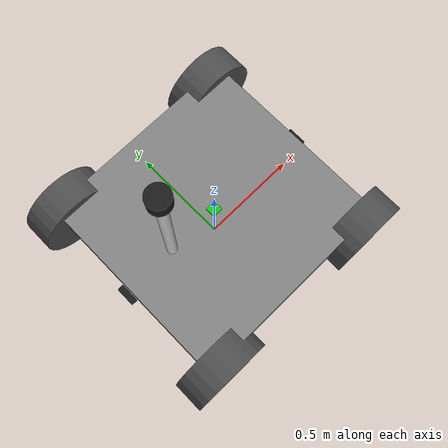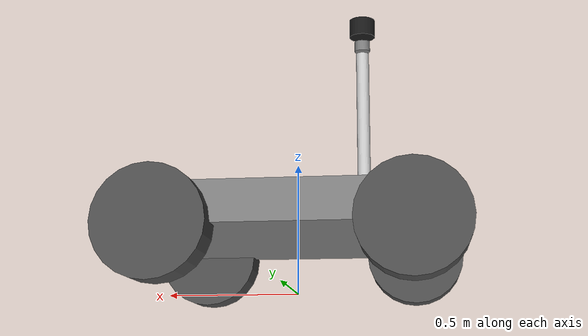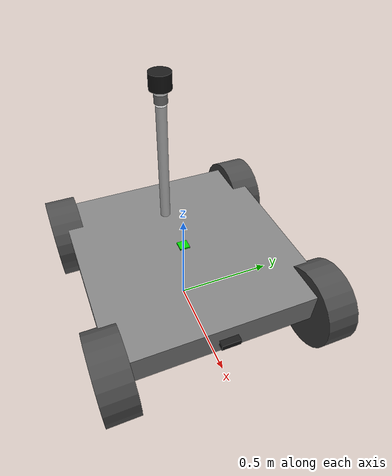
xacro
<?xml version="1.0"?>
<robot xmlns:xacro="http://www.ros.org/wiki/xacro" name="kolestel_robot">

  <!-- If true, visual geometry is loaded from meshes/ (exported from Onshape). -->
  <xacro:arg name="use_meshes" default="false"/>

  <!--
    Main robot description file for Gazebo Sim (Harmonic).
    Combines base robot model with Gazebo Sim plugins.

    Usage:
      xacro robot_gz.urdf.xacro > robot.urdf
  -->

  <!-- Include robot properties -->
  <xacro:include filename="$(find kolestel_robot)/urdf/robot_properties.xacro"/>

  <!-- Include inertia macros -->
  <xacro:include filename="$(find kolestel_robot)/urdf/inertia_macros.xacro"/>

  <!-- Include wheel macro -->
  <xacro:include filename="$(find kolestel_robot)/urdf/wheel.xacro"/>

  <!-- Include sensors (geometry + frames) -->
  <xacro:include filename="$(find kolestel_robot)/urdf/sensors.xacro"/>

  <!-- Include Gazebo Sim plugins -->
  <xacro:include filename="$(find kolestel_robot)/urdf/gz_plugins.xacro"/>

  <!-- ==================== BASE FOOTPRINT ==================== -->
  <link name="base_footprint"/>

  <joint name="base_footprint_joint" type="fixed">
    <parent link="base_footprint"/>
    <child link="base_link"/>
    <!-- Put base_link above ground by wheel radius -->
    <origin xyz="0 0 ${wheel_radius}" rpy="0 0 0"/>
  </joint>

  <!-- ==================== BASE LINK (CHASSIS) ==================== -->
  <link name="base_link">
    <visual>
      <origin xyz="0 0 ${chassis_height/2}" rpy="0 0 0"/>
      <geometry>
        <xacro:if value="$(arg use_meshes)">
          <mesh filename="package://kolestel_robot/meshes/chassis_visual.dae" scale="1 1 1"/>
        </xacro:if>
        <xacro:unless value="$(arg use_meshes)">
          <box size="${chassis_length} ${chassis_width} ${chassis_height}"/>
        </xacro:unless>
      </geometry>
      <material name="grey">
        <color rgba="0.5 0.5 0.5 1"/>
      </material>
    </visual>
    <collision>
      <origin xyz="0 0 ${chassis_height/2}" rpy="0 0 0"/>
      <geometry>
        <box size="${chassis_length} ${chassis_width} ${chassis_height}"/>
      </geometry>
    </collision>
    <xacro:box_inertia m="${chassis_mass}" x="${chassis_length}" y="${chassis_width}" z="${chassis_height}"/>
  </link>

  <!-- ==================== ANTENNA MAST ==================== -->
  <link name="antenna_mast_link">
    <visual>
      <origin xyz="0 0 ${antenna_height/2}" rpy="0 0 0"/>
      <geometry>
        <cylinder radius="${mast_radius}" length="${antenna_height}"/>
      </geometry>
      <material name="silver">
        <color rgba="0.8 0.8 0.8 1"/>
      </material>
    </visual>
    <collision>
      <origin xyz="0 0 ${antenna_height/2}" rpy="0 0 0"/>
      <geometry>
        <cylinder radius="${mast_radius}" length="${antenna_height}"/>
      </geometry>
    </collision>
    <xacro:cylinder_inertia m="${mast_mass}" r="${mast_radius}" h="${antenna_height}"/>
  </link>

  <joint name="antenna_mast_joint" type="fixed">
    <parent link="base_link"/>
    <child link="antenna_mast_link"/>
    <origin xyz="${-chassis_length/4} 0 ${chassis_height}" rpy="0 0 0"/>
  </joint>

  <!-- ==================== WHEELS ==================== -->
  <!-- Wheel macro signature: (prefix parent x_pos y_pos) -->
  <xacro:wheel prefix="front_left"  parent="base_link" x_pos="${wheelbase/2}"  y_pos="${track_width/2}"/>
  <xacro:wheel prefix="front_right" parent="base_link" x_pos="${wheelbase/2}"  y_pos="${-track_width/2}"/>
  <xacro:wheel prefix="rear_left"   parent="base_link" x_pos="${-wheelbase/2}" y_pos="${track_width/2}"/>
  <xacro:wheel prefix="rear_right"  parent="base_link" x_pos="${-wheelbase/2}" y_pos="${-track_width/2}"/>

  <!-- ==================== SENSORS ==================== -->
  <xacro:lidar_sensor parent="antenna_mast_link" x_pos="0" y_pos="0" z_pos="${antenna_height + 0.05}"/>

  <xacro:camera_sensor name="camera_front" parent="base_link"
                       x_pos="${chassis_length/2 + 0.02}" y_pos="0" z_pos="${chassis_height/2}"
                       roll="0" pitch="0" yaw="0"/>

  <xacro:camera_sensor name="camera_rear" parent="base_link"
                       x_pos="${-chassis_length/2 - 0.02}" y_pos="0" z_pos="${chassis_height/2}"
                       roll="0" pitch="0" yaw="${pi}"/>

  <!-- Line-follow camera (downward looking). Tune x_pos/z_pos for your track. -->
  <xacro:camera_sensor name="line_camera" parent="base_link"
                       x_pos="${chassis_length/2 - 0.10}" y_pos="0" z_pos="0.12"
                       roll="0" pitch="0" yaw="0"/>

  <xacro:imu_sensor parent="base_link" x_pos="0" y_pos="0" z_pos="${chassis_height}"/>

</robot>

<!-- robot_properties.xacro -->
<robot xmlns:xacro="http://www.ros.org/wiki/xacro">

  <!-- ROBOT PROPERTIES        -->
  <!-- Based on technical drawings: Kolestel 001 -->

  <!-- Physical Constants -->
  <xacro:property name="gravity" value="9.81"/>

  <!-- CHASSIS DIMENSIONS      -->

  <!-- Main chassis (base_link) -->
  <xacro:property name="chassis_length" value="1.024"/>      <!-- meters (from drawing: 1024mm) -->
  <xacro:property name="chassis_width" value="1.000"/>       <!-- meters (from drawing: 1000mm) -->
  <xacro:property name="chassis_height" value="0.150"/>      <!-- meters (estimated frame height) -->
  <xacro:property name="chassis_mass" value="100.0"/>        <!-- kg (main frame mass) -->

  <!-- Ground clearance -->
  <xacro:property name="ground_clearance" value="0.271"/>    <!-- meters (from drawing: 271mm) -->

  <!-- WHEEL DIMENSIONS        -->

  <xacro:property name="wheel_radius" value="0.200"/>        <!-- meters (diameter 400mm / 2) -->
  <xacro:property name="wheel_width" value="0.150"/>         <!-- meters (estimated tire width) -->
  <xacro:property name="wheel_mass" value="7.5"/>            <!-- kg per wheel -->

  <!-- Wheel positions -->
  <xacro:property name="wheelbase" value="0.889"/>           <!-- meters (from drawing: 889mm) -->
  <xacro:property name="wheel_track" value="1.000"/>         <!-- meters (track width: 1000mm) -->

  <!-- Aliases for compatibility with other xacro files -->
  <!-- (Some files refer to track_width instead of wheel_track) -->
  <xacro:property name="track_width" value="${wheel_track}"/>

  <!-- Wheel physics -->
  <xacro:property name="wheel_friction_mu1" value="1.0"/>
  <xacro:property name="wheel_friction_mu2" value="1.0"/>
  <xacro:property name="wheel_kp" value="1000000.0"/>
  <xacro:property name="wheel_kd" value="100.0"/>

  <!-- UPPER STRUCTURE         -->

  <!-- Equipment platform -->
  <xacro:property name="platform_length" value="0.800"/>
  <xacro:property name="platform_width" value="0.600"/>
  <xacro:property name="platform_height" value="0.050"/>
  <xacro:property name="platform_mass" value="15.0"/>
  <xacro:property name="platform_z_offset" value="0.200"/>   <!-- height above chassis -->

  <!-- Mast (antenna pole) -->
  <xacro:property name="mast_radius" value="0.025"/>
  <xacro:property name="mast_height" value="0.600"/>         <!-- from drawing: total height 1342mm -->
  <xacro:property name="mast_mass" value="3.0"/>

  <!-- Alias used by robot_gz.urdf.xacro -->
  <xacro:property name="antenna_height" value="${mast_height}"/>

  <!-- SENSOR DIMENSIONS       -->

  <!-- Lidar -->
  <xacro:property name="lidar_radius" value="0.050"/>
  <xacro:property name="lidar_height" value="0.070"/>
  <xacro:property name="lidar_mass" value="0.830"/>          <!-- typical 2D lidar mass -->
  <xacro:property name="lidar_x_offset" value="0.0"/>
  <xacro:property name="lidar_z_offset" value="0.300"/>      <!-- above platform -->

  <!-- Cameras -->
  <xacro:property name="camera_length" value="0.030"/>
  <xacro:property name="camera_width" value="0.090"/>
  <xacro:property name="camera_height" value="0.030"/>
  <xacro:property name="camera_mass" value="0.200"/>

  <!-- IMU -->
  <xacro:property name="imu_size" value="0.050"/>
  <xacro:property name="imu_mass" value="0.100"/>

  <!-- BATTERY BOX             -->

  <xacro:property name="battery_length" value="0.400"/>
  <xacro:property name="battery_width" value="0.300"/>
  <xacro:property name="battery_height" value="0.200"/>
  <xacro:property name="battery_mass" value="25.0"/>         <!-- typical battery pack -->

  <!-- CONTROL PARAMETERS      -->

  <!-- Skid-steer drive -->
  <xacro:property name="max_wheel_torque" value="100.0"/>    <!-- Nm -->
  <xacro:property name="max_wheel_acceleration" value="3.0"/> <!-- rad/s^2 -->
  <xacro:property name="max_linear_velocity" value="2.0"/>
  <xacro:property name="max_angular_velocity" value="1.5"/>  <!-- rad/s -->

  <!-- COLORS / MATERIALS      -->

  <material name="black">
    <color rgba="0.1 0.1 0.1 1.0"/>
  </material>

  <material name="dark_gray">
    <color rgba="0.3 0.3 0.3 1.0"/>
  </material>

  <material name="gray">
    <color rgba="0.5 0.5 0.5 1.0"/>
  </material>

  <material name="light_gray">
    <color rgba="0.7 0.7 0.7 1.0"/>
  </material>

  <material name="white">
    <color rgba="0.95 0.95 0.95 1.0"/>
  </material>

  <material name="red">
    <color rgba="0.8 0.0 0.0 1.0"/>
  </material>

  <material name="green">
    <color rgba="0.0 0.8 0.0 1.0"/>
  </material>

  <material name="blue">
    <color rgba="0.0 0.0 0.8 1.0"/>
  </material>

  <material name="yellow">
    <color rgba="0.9 0.9 0.0 1.0"/>
  </material>

  <material name="orange">
    <color rgba="1.0 0.5 0.0 1.0"/>
  </material>

</robot>

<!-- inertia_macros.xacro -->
<robot xmlns:xacro="http://www.ros.org/wiki/xacro">

  <!-- INERTIA MACROS          -->

  <!-- Macro for box inertia -->
  <xacro:macro name="box_inertia" params="m x y z">
    <inertial>
      <mass value="${m}"/>
      <inertia
        ixx="${(1/12) * m * (y*y + z*z)}" ixy="0.0" ixz="0.0"
        iyy="${(1/12) * m * (x*x + z*z)}" iyz="0.0"
        izz="${(1/12) * m * (x*x + y*y)}"/>
    </inertial>
  </xacro:macro>

  <!-- Macro for cylinder inertia (aligned with Z axis) -->
  <xacro:macro name="cylinder_inertia" params="m r h">
    <inertial>
      <mass value="${m}"/>
      <inertia
        ixx="${(1/12) * m * (3*r*r + h*h)}" ixy="0.0" ixz="0.0"
        iyy="${(1/12) * m * (3*r*r + h*h)}" iyz="0.0"
        izz="${(1/2) * m * r * r}"/>
    </inertial>
  </xacro:macro>

  <!-- Macro for cylinder inertia (aligned with Y axis - for wheels) -->
  <xacro:macro name="wheel_inertia" params="m r h">
    <inertial>
      <mass value="${m}"/>
      <inertia
        ixx="${(1/12) * m * (3*r*r + h*h)}" ixy="0.0" ixz="0.0"
        iyy="${(1/2) * m * r * r}" iyz="0.0"
        izz="${(1/12) * m * (3*r*r + h*h)}"/>
    </inertial>
  </xacro:macro>

  <!-- Macro for sphere inertia -->
  <xacro:macro name="sphere_inertia" params="m r">
    <inertial>
      <mass value="${m}"/>
      <inertia
        ixx="${(2/5) * m * r * r}" ixy="0.0" ixz="0.0"
        iyy="${(2/5) * m * r * r}" iyz="0.0"
        izz="${(2/5) * m * r * r}"/>
    </inertial>
  </xacro:macro>

  <!-- Macro for null inertia (for dummy links) -->
  <xacro:macro name="null_inertia">
    <inertial>
      <mass value="0.001"/>
      <inertia ixx="0.0001" ixy="0" ixz="0" iyy="0.0001" iyz="0" izz="0.0001"/>
    </inertial>
  </xacro:macro>

</robot>

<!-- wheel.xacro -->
<robot xmlns:xacro="http://www.ros.org/wiki/xacro">

  <!-- WHEEL MACRO             -->

  <xacro:macro name="wheel" params="prefix parent x_pos y_pos">

    <!-- Wheel Link -->
    <link name="${prefix}_wheel_link">
      <visual>
        <origin xyz="0 0 0" rpy="${pi/2} 0 0"/>
        <geometry>
          <cylinder radius="${wheel_radius}" length="${wheel_width}"/>
        </geometry>
        <material name="dark_gray"/>
      </visual>

      <collision>
        <origin xyz="0 0 0" rpy="${pi/2} 0 0"/>
        <geometry>
          <cylinder radius="${wheel_radius}" length="${wheel_width}"/>
        </geometry>
      </collision>

      <xacro:wheel_inertia m="${wheel_mass}" r="${wheel_radius}" h="${wheel_width}"/>
    </link>

    <!-- Wheel Joint -->
    <joint name="${prefix}_wheel_joint" type="continuous">
      <parent link="${parent}"/>
      <child link="${prefix}_wheel_link"/>
      <origin xyz="${x_pos} ${y_pos} 0" rpy="0 0 0"/>
      <axis xyz="0 1 0"/>
      <dynamics damping="0.1" friction="0.1"/>
      <limit effort="${max_wheel_torque}" velocity="20.0"/>
    </joint>

    <!-- Gazebo wheel properties -->
    <gazebo reference="${prefix}_wheel_link">
      <material>Gazebo/DarkGrey</material>
      <mu1>${wheel_friction_mu1}</mu1>
      <mu2>${wheel_friction_mu2}</mu2>
      <kp>${wheel_kp}</kp>
      <kd>${wheel_kd}</kd>
      <minDepth>0.001</minDepth>
      <maxVel>1.0</maxVel>
      <fdir1>1 0 0</fdir1>
    </gazebo>

    <!-- Transmission for ros2_control -->
    <transmission name="${prefix}_wheel_transmission">
      <type>transmission_interface/SimpleTransmission</type>
      <joint name="${prefix}_wheel_joint">
        <hardwareInterface>hardware_interface/VelocityJointInterface</hardwareInterface>
      </joint>
      <actuator name="${prefix}_wheel_motor">
        <hardwareInterface>hardware_interface/VelocityJointInterface</hardwareInterface>
        <mechanicalReduction>1</mechanicalReduction>
      </actuator>
    </transmission>

  </xacro:macro>

</robot>

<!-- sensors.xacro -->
<robot xmlns:xacro="http://www.ros.org/wiki/xacro">

  <!-- Sensor macros: geometry + frames only (Gazebo Sim sensors are configured in gz_plugins.xacro) -->

  <!-- LIDAR MACRO             -->
  <xacro:macro name="lidar_sensor" params="parent x_pos y_pos z_pos">

    <!-- Lidar Mount -->
    <link name="lidar_mount_link">
      <visual>
        <origin xyz="0 0 -0.02" rpy="0 0 0"/>
        <geometry>
          <cylinder radius="0.03" length="0.04"/>
        </geometry>
        <material name="gray"/>
      </visual>
      <xacro:cylinder_inertia m="0.1" r="0.03" h="0.04"/>
    </link>

    <joint name="lidar_mount_joint" type="fixed">
      <parent link="${parent}"/>
      <child link="lidar_mount_link"/>
      <origin xyz="${x_pos} ${y_pos} ${z_pos}" rpy="0 0 0"/>
    </joint>

    <!-- Lidar Link -->
    <link name="lidar_link">
      <visual>
        <origin xyz="0 0 0" rpy="0 0 0"/>
        <geometry>
          <cylinder radius="${lidar_radius}" length="${lidar_height}"/>
        </geometry>
        <material name="black"/>
      </visual>

      <collision>
        <origin xyz="0 0 0" rpy="0 0 0"/>
        <geometry>
          <cylinder radius="${lidar_radius}" length="${lidar_height}"/>
        </geometry>
      </collision>

      <xacro:cylinder_inertia m="${lidar_mass}" r="${lidar_radius}" h="${lidar_height}"/>
    </link>

    <joint name="lidar_joint" type="fixed">
      <parent link="lidar_mount_link"/>
      <child link="lidar_link"/>
      <origin xyz="0 0 ${lidar_height/2 + 0.02}" rpy="0 0 0"/>
    </joint>

  </xacro:macro>

  <!-- CAMERA MACRO            -->
  <xacro:macro name="camera_sensor" params="name parent x_pos y_pos z_pos roll pitch yaw">

    <link name="${name}_link">
      <visual>
        <origin xyz="0 0 0" rpy="0 0 0"/>
        <geometry>
          <box size="${camera_length} ${camera_width} ${camera_height}"/>
        </geometry>
        <material name="black"/>
      </visual>

      <collision>
        <origin xyz="0 0 0" rpy="0 0 0"/>
        <geometry>
          <box size="${camera_length} ${camera_width} ${camera_height}"/>
        </geometry>
      </collision>

      <xacro:box_inertia m="${camera_mass}" x="${camera_length}" y="${camera_width}" z="${camera_height}"/>
    </link>

    <joint name="${name}_joint" type="fixed">
      <parent link="${parent}"/>
      <child link="${name}_link"/>
      <origin xyz="${x_pos} ${y_pos} ${z_pos}" rpy="${roll} ${pitch} ${yaw}"/>
    </joint>

    <!-- ROS optical frame convention: Z forward, X right, Y down -->
    <link name="${name}_optical_link"/>
    <joint name="${name}_optical_joint" type="fixed">
      <parent link="${name}_link"/>
      <child link="${name}_optical_link"/>
      <origin xyz="0 0 0" rpy="${-pi/2} 0 ${-pi/2}"/>
    </joint>

  </xacro:macro>

  <!-- DEPTH CAMERA MACRO      -->
  <xacro:macro name="depth_camera_sensor" params="name parent x_pos y_pos z_pos roll pitch yaw">

    <link name="${name}_link">
      <visual>
        <origin xyz="0 0 0" rpy="0 0 0"/>
        <geometry>
          <box size="0.025 0.090 0.025"/>
        </geometry>
        <material name="black"/>
      </visual>

      <collision>
        <origin xyz="0 0 0" rpy="0 0 0"/>
        <geometry>
          <box size="0.025 0.090 0.025"/>
        </geometry>
      </collision>

      <xacro:box_inertia m="0.072" x="0.025" y="0.090" z="0.025"/>
    </link>

    <joint name="${name}_joint" type="fixed">
      <parent link="${parent}"/>
      <child link="${name}_link"/>
      <origin xyz="${x_pos} ${y_pos} ${z_pos}" rpy="${roll} ${pitch} ${yaw}"/>
    </joint>

    <link name="${name}_optical_link"/>
    <joint name="${name}_optical_joint" type="fixed">
      <parent link="${name}_link"/>
      <child link="${name}_optical_link"/>
      <origin xyz="0 0 0" rpy="${-pi/2} 0 ${-pi/2}"/>
    </joint>

  </xacro:macro>

  <!-- IMU MACRO               -->
  <xacro:macro name="imu_sensor" params="parent x_pos y_pos z_pos">

    <link name="imu_link">
      <visual>
        <origin xyz="0 0 0" rpy="0 0 0"/>
        <geometry>
          <box size="${imu_size} ${imu_size} 0.015"/>
        </geometry>
        <material name="green"/>
      </visual>

      <collision>
        <origin xyz="0 0 0" rpy="0 0 0"/>
        <geometry>
          <box size="${imu_size} ${imu_size} 0.015"/>
        </geometry>
      </collision>

      <xacro:box_inertia m="${imu_mass}" x="${imu_size}" y="${imu_size}" z="0.015"/>
    </link>

    <joint name="imu_joint" type="fixed">
      <parent link="${parent}"/>
      <child link="imu_link"/>
      <origin xyz="${x_pos} ${y_pos} ${z_pos}" rpy="0 0 0"/>
    </joint>

  </xacro:macro>

  <!-- GPS MACRO               -->
  <xacro:macro name="gps_sensor" params="parent x_pos y_pos z_pos">

    <link name="gps_link">
      <visual>
        <origin xyz="0 0 0" rpy="0 0 0"/>
        <geometry>
          <cylinder radius="0.03" length="0.02"/>
        </geometry>
        <material name="white"/>
      </visual>

      <xacro:cylinder_inertia m="0.05" r="0.03" h="0.02"/>
    </link>

    <joint name="gps_joint" type="fixed">
      <parent link="${parent}"/>
      <child link="gps_link"/>
      <origin xyz="${x_pos} ${y_pos} ${z_pos}" rpy="0 0 0"/>
    </joint>

  </xacro:macro>

</robot>
